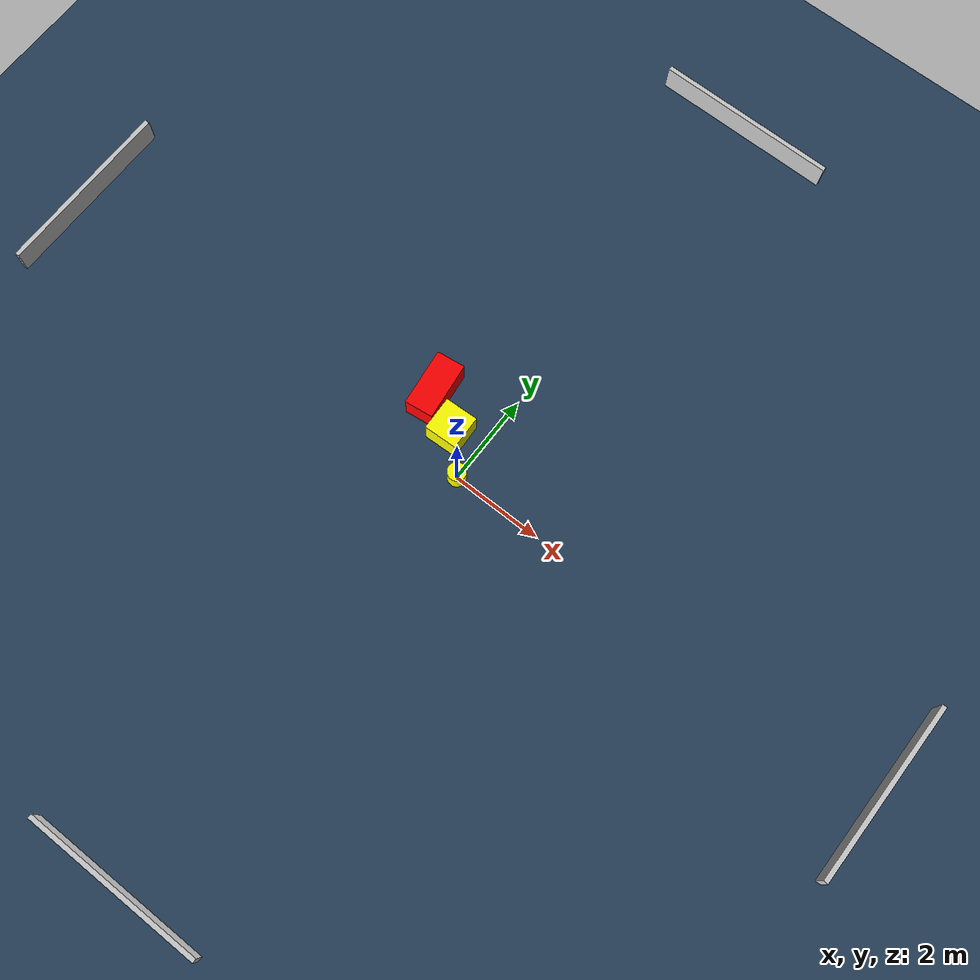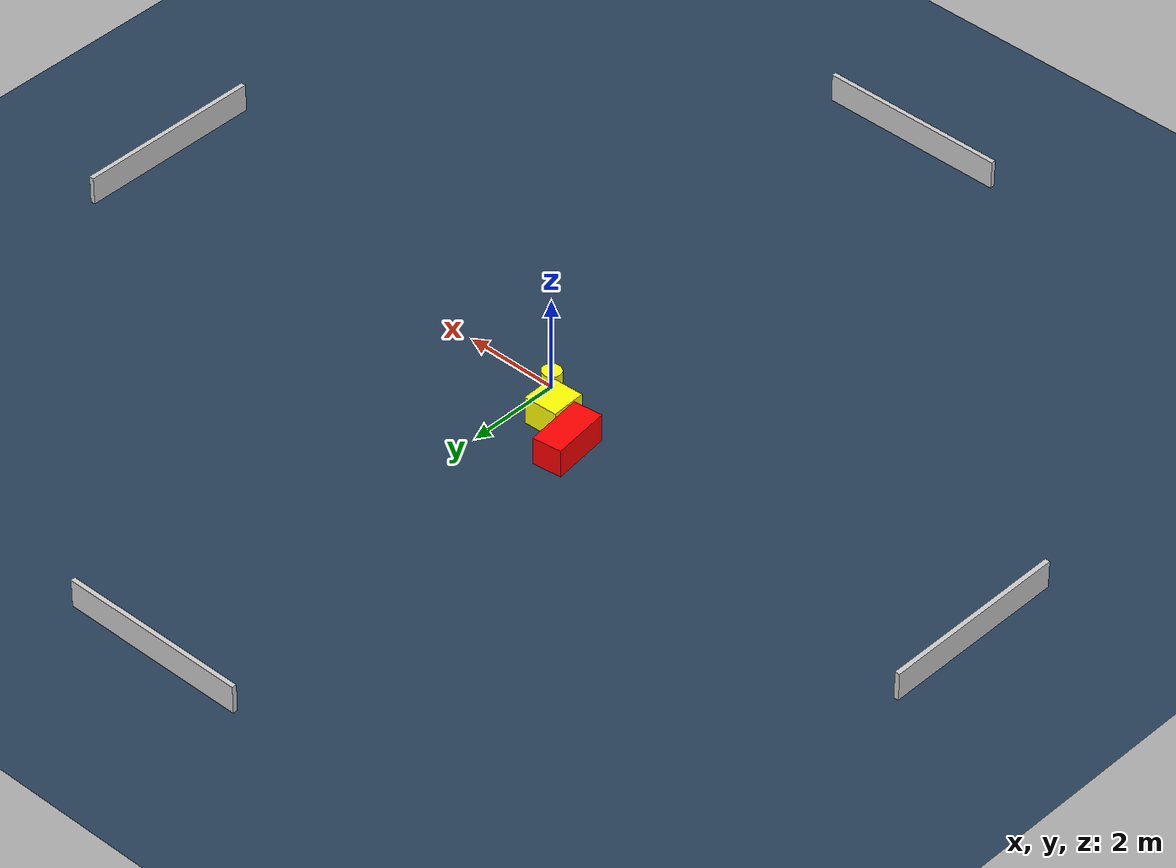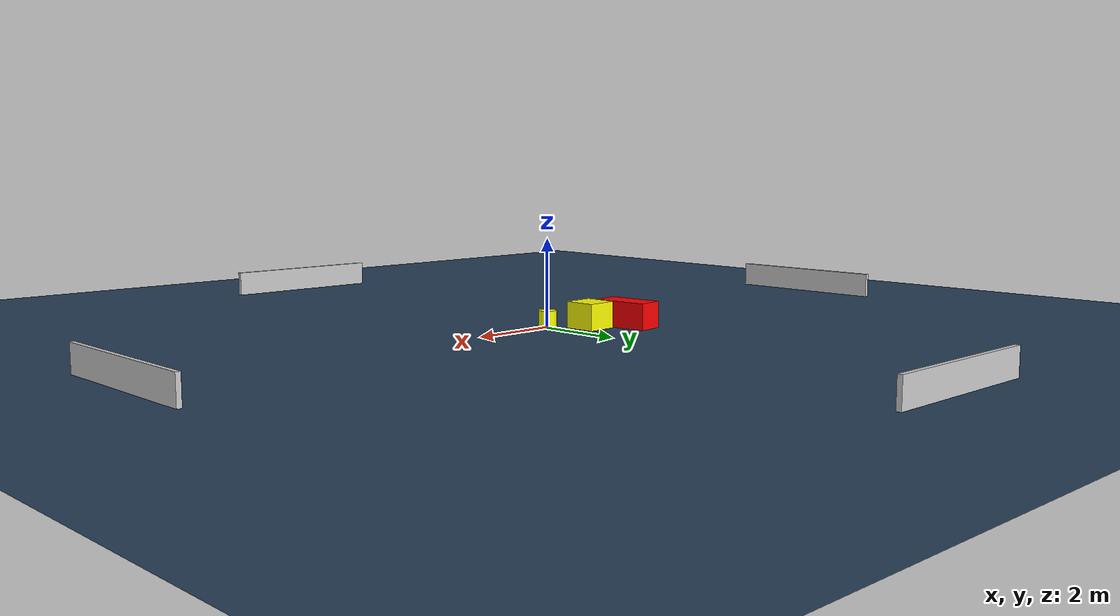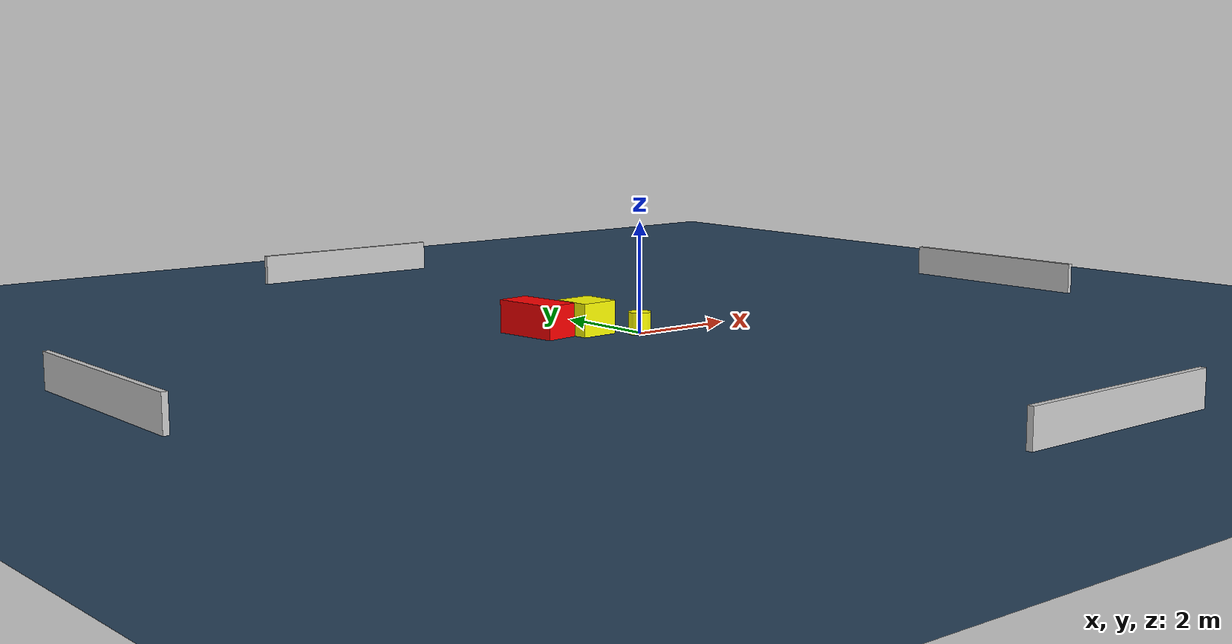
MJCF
<?xml version="1.0" ?>
<mujoco model="generated_environment">
  <option timestep="0.01" integrator="RK4" cone="elliptic"/>
  <default>
    <geom density="1"/>
  </default>
  <asset>
    <texture builtin="gradient" height="3072" name="skybox" rgb1="0.3 0.5 0.7" rgb2="0 0 0" type="skybox" width="512"/>
    <texture builtin="checker" height="300" name="groundplane" rgb1="0.2 0.3 0.4" rgb2="0.1 0.2 0.3" type="2d" width="300"/>
    <material name="groundplane" reflectance="0.2" texrepeat="5 5" texture="groundplane"/>
  </asset>
  <worldbody>
    <light dir="0 0 -1" directional="true" pos="0 0 1.5"/>
    <geom condim="3" friction="0.5 0.005 0.001" material="groundplane" name="floor" pos="0 0 0" size="0 0 0.05" type="plane"/>
    <body name="walls">
      <geom name="wall_1" condim="4" pos="-10.0 0.0 0.3" rgba="0.800000011920929 0.800000011920929 0.800000011920929 1.0" size="0.05 2.0 0.3" type="box"/>
      <geom name="wall_2" condim="4" pos="10.0 0.0 0.3" rgba="0.800000011920929 0.800000011920929 0.800000011920929 1.0" size="0.05 2.0 0.3" type="box"/>
      <geom name="wall_3" condim="4" pos="0.0 -10.0 0.3" rgba="0.800000011920929 0.800000011920929 0.800000011920929 1.0" size="2.0 0.05 0.3" type="box"/>
      <geom name="wall_4" condim="4" pos="0.0 10.0 0.3" rgba="0.800000011920929 0.800000011920929 0.800000011920929 1.0" size="2.0 0.05 0.3" type="box"/>
    </body>
    <body name="robot">
      <joint name="joint_x" type="slide" pos="0 0 0" axis="1 0 0"/>
      <joint name="joint_y" type="slide" pos="0 0 0" axis="0 1 0"/>
      <geom name="robot" type="cylinder" pos="0.0 0.0 0.2" size="0.2 0.2 0.0" mass="5.0" friction="1.0 0.005 0.0001" condim="4" rgba="1.0 1.0 0.0 1.0"/>
    </body>
    <body name="obstacle_1_movable">
      <geom name="obstacle_1_movable" condim="4" pos="-0.6783185564962423 0.6736445934660134 0.3" euler="0 0 92.33160681286871" friction="0.0 0.005 0.001" rgba="1.0 1.0 0.0 1.0" size="0.3689489059150518 0.3609901599524462 0.3" type="box" mass="0.1"/>
      <joint type="free"/>
    </body>
    <body name="obstacle_2_static">
      <geom name="obstacle_2_static" condim="4" pos="-1.4436319292320536 1.1211830807438004 0.3" euler="0 0 7.07127406970645" friction="0.0 0.005 0.001" rgba="1.0 0.0 0.0 1.0" size="0.3100215817035254 0.625982248297354 0.3" type="box"/>
    </body>
  </worldbody>
  <actuator>
    <motor name="actuator_x" joint="joint_x" gear="1" ctrlrange="-1 1"/>
    <motor name="actuator_y" joint="joint_y" gear="1" ctrlrange="-1 1"/>
  </actuator>
</mujoco>
